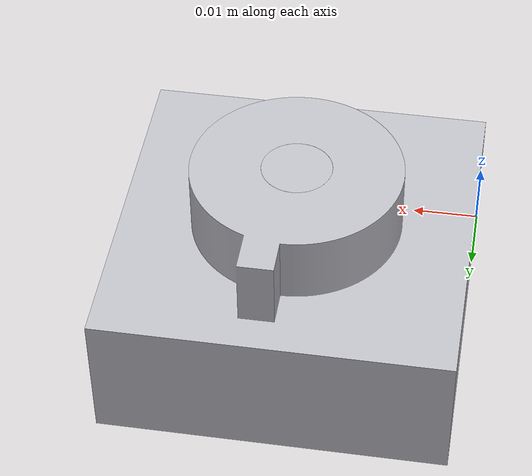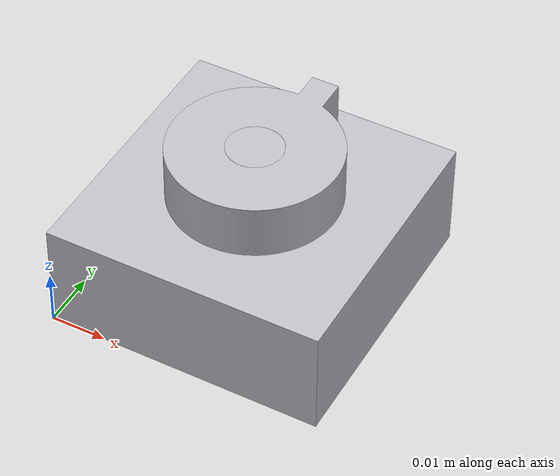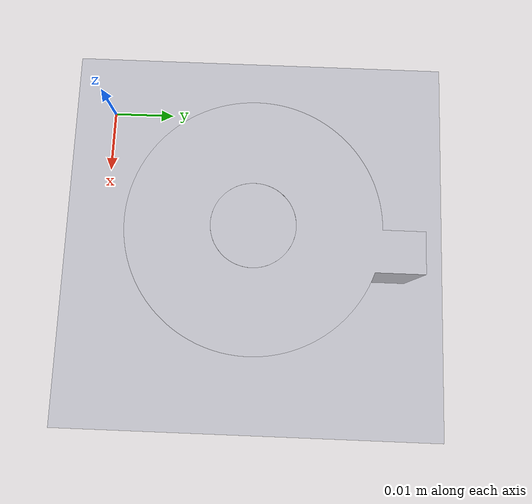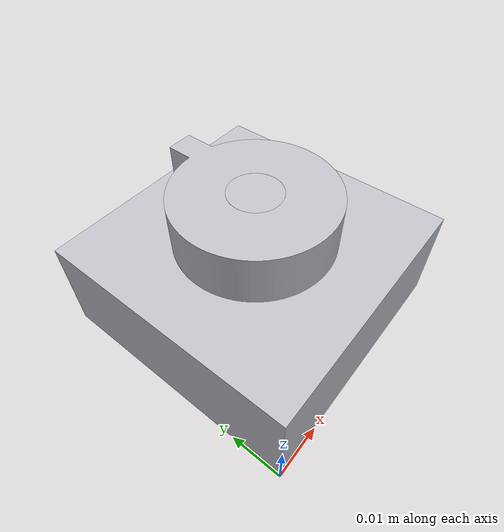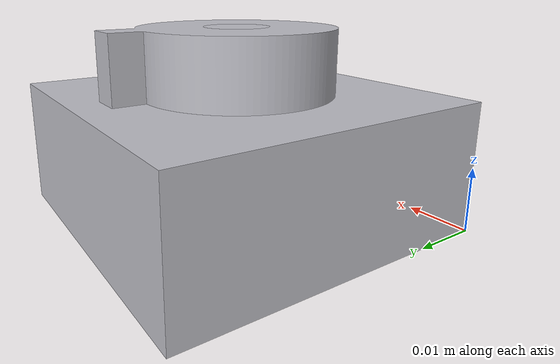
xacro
<?xml version="1.0" ?>
<robot name="test" xmlns:xacro="http://www.ros.org/wiki/xacro">

<xacro:include filename="$(find test_description)/urdf/materials.xacro" />
<xacro:include filename="$(find test_description)/urdf/test.trans" />
<xacro:include filename="$(find test_description)/urdf/test.gazebo" />
<link name="base_link">
  <inertial>
    <origin xyz="0.025000000000016172 0.025 0.010231975585050205" rpy="0 0 0"/>
    <mass value="0.3986653755826694"/>
    <inertia ixx="9.6e-05" iyy="9.6e-05" izz="0.000164" ixy="0.0" iyz="0.0" ixz="0.0"/>
  </inertial>
  <visual>
    <origin xyz="0 0 0" rpy="0 0 0"/>
    <geometry>
      <mesh filename="package://test_description/meshes/base_link.stl" scale="0.001 0.001 0.001"/>
    </geometry>
    <material name="silver"/>
  </visual>
  <collision>
    <origin xyz="0 0 0" rpy="0 0 0"/>
    <geometry>
      <mesh filename="package://test_description/meshes/base_link.stl" scale="0.001 0.001 0.001"/>
    </geometry>
  </collision>
</link>

<link name="gear_1">
  <inertial>
    <origin xyz="0.00010356773516771028 0.0007000325814118663 0.005000000000000001" rpy="0 0 0"/>
    <mass value="0.05139642616112526"/>
    <inertia ixx="4e-06" iyy="4e-06" izz="7e-06" ixy="-0.0" iyz="0.0" ixz="0.0"/>
  </inertial>
  <visual>
    <origin xyz="-0.025 -0.025 -0.02" rpy="0 0 0"/>
    <geometry>
      <mesh filename="package://test_description/meshes/gear_1.stl" scale="0.001 0.001 0.001"/>
    </geometry>
    <material name="silver"/>
  </visual>
  <collision>
    <origin xyz="-0.025 -0.025 -0.02" rpy="0 0 0"/>
    <geometry>
      <mesh filename="package://test_description/meshes/gear_1.stl" scale="0.001 0.001 0.001"/>
    </geometry>
  </collision>
</link>

<joint name="Revolute 1" type="continuous">
  <origin xyz="0.025 0.025 0.02" rpy="0 0 0"/>
  <parent link="base_link"/>
  <child link="gear_1"/>
  <axis xyz="0.0 0.0 1.0"/>
</joint>

</robot>

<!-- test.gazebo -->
<robot name="test" xmlns:xacro="http://www.ros.org/wiki/xacro" >

<xacro:property name="body_color" value="Gazebo/Silver" />

<gazebo>
  <plugin name="control" filename="libgazebo_ros_control.so"/>
</gazebo>
<gazebo reference="base_link">
  <material>${body_color}</material>
  <mu1>0.2</mu1>
  <mu2>0.2</mu2>
  <selfCollide>true</selfCollide>
  <gravity>true</gravity>
</gazebo>

<gazebo reference="gear_1">
  <material>${body_color}</material>
  <mu1>0.2</mu1>
  <mu2>0.2</mu2>
  <selfCollide>true</selfCollide>
</gazebo>

</robot>
